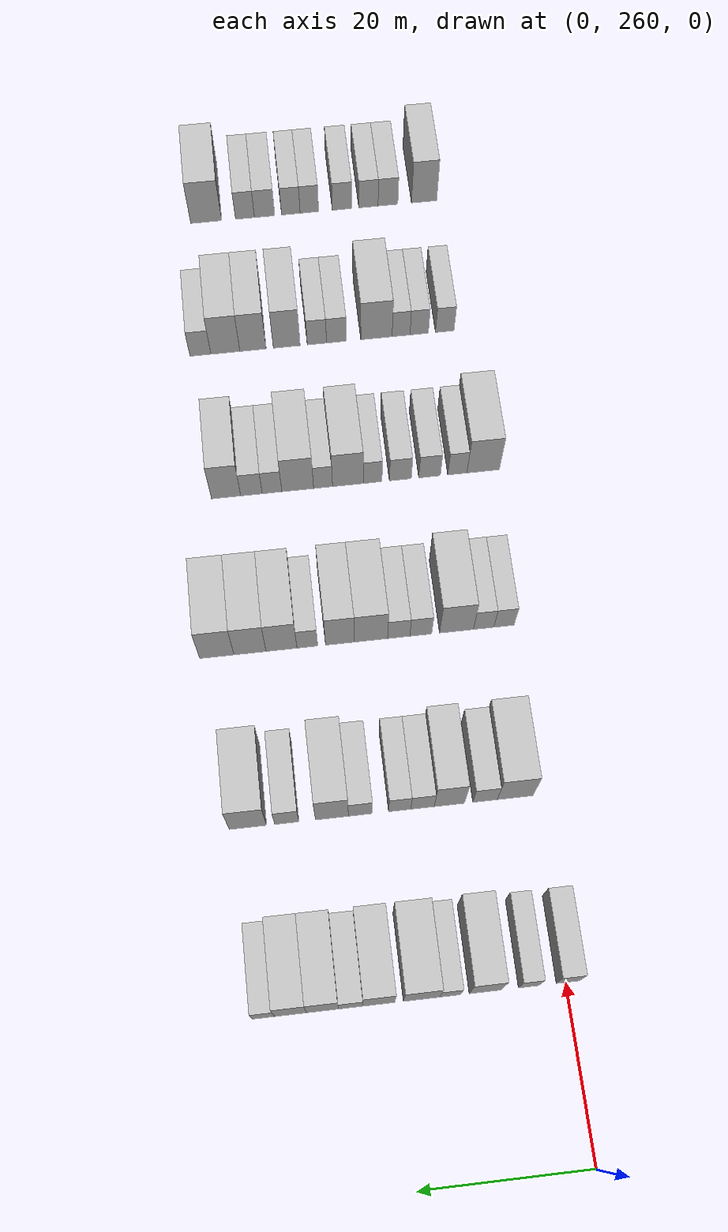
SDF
<sdf version="1.6">
 <world name="default">
  <model name="building_154">
   <static>1</static>
   <pose>25.0000 259.8248 0 0.000000 0.000000 0.000000</pose>
   <link name="link">
    <pose>0 0 3.00 0 0 0</pose>
    <collision name="collision"><geometry><box><size>10.0000 2.7552 6.0000</size></box></geometry></collision>
    <visual name="visual">
     <cast_shadows>0</cast_shadows>
     <geometry><box><size>10.0000 2.7552 6.0000</size></box></geometry>
     <material>
      <script>
       <uri>model://HANNAS_wall/materials/scripts</uri>
       <uri>model://HANNAS_wall/materials/textures</uri>
       <name>vrc/HANNAS_wall</name>
      </script>
     </material>
    </visual>
   </link>
  </model>
  <model name="building_155">
   <static>1</static>
   <pose>25.0000 264.4104 0 0.000000 0.000000 0.000000</pose>
   <link name="link">
    <pose>0 0 3.00 0 0 0</pose>
    <collision name="collision"><geometry><box><size>10.0000 2.4160 6.0000</size></box></geometry></collision>
    <visual name="visual">
     <cast_shadows>0</cast_shadows>
     <geometry><box><size>10.0000 2.4160 6.0000</size></box></geometry>
     <material>
      <script>
       <uri>model://HANNAS_wall/materials/scripts</uri>
       <uri>model://HANNAS_wall/materials/textures</uri>
       <name>vrc/HANNAS_wall</name>
      </script>
     </material>
    </visual>
   </link>
  </model>
  <model name="building_156">
   <static>1</static>
   <pose>25.0000 269.4851 0 0.000000 0.000000 0.000000</pose>
   <link name="link">
    <pose>0 0 4.50 0 0 0</pose>
    <collision name="collision"><geometry><box><size>10.0000 3.7335 9.0000</size></box></geometry></collision>
    <visual name="visual">
     <cast_shadows>0</cast_shadows>
     <geometry><box><size>10.0000 3.7335 9.0000</size></box></geometry>
     <material>
      <script>
       <uri>model://HANNAS_wall/materials/scripts</uri>
       <uri>model://HANNAS_wall/materials/textures</uri>
       <name>vrc/HANNAS_wall</name>
      </script>
     </material>
    </visual>
   </link>
  </model>
  <model name="building_157">
   <static>1</static>
   <pose>25.0000 273.5731 0 0.000000 0.000000 0.000000</pose>
   <link name="link">
    <pose>0 0 3.00 0 0 0</pose>
    <collision name="collision"><geometry><box><size>10.0000 2.4425 6.0000</size></box></geometry></collision>
    <visual name="visual">
     <cast_shadows>0</cast_shadows>
     <geometry><box><size>10.0000 2.4425 6.0000</size></box></geometry>
     <material>
      <script>
       <uri>model://HANNAS_wall/materials/scripts</uri>
       <uri>model://HANNAS_wall/materials/textures</uri>
       <name>vrc/HANNAS_wall</name>
      </script>
     </material>
    </visual>
   </link>
  </model>
  <model name="building_158">
   <static>1</static>
   <pose>25.0000 276.8900 0 0.000000 0.000000 0.000000</pose>
   <link name="link">
    <pose>0 0 4.50 0 0 0</pose>
    <collision name="collision"><geometry><box><size>10.0000 4.1914 9.0000</size></box></geometry></collision>
    <visual name="visual">
     <cast_shadows>0</cast_shadows>
     <geometry><box><size>10.0000 4.1914 9.0000</size></box></geometry>
     <material>
      <script>
       <uri>model://HANNAS_wall/materials/scripts</uri>
       <uri>model://HANNAS_wall/materials/textures</uri>
       <name>vrc/HANNAS_wall</name>
      </script>
     </material>
    </visual>
   </link>
  </model>
  <model name="building_159">
   <static>1</static>
   <pose>25.0000 281.8248 0 0.000000 0.000000 0.000000</pose>
   <link name="link">
    <pose>0 0 4.50 0 0 0</pose>
    <collision name="collision"><geometry><box><size>10.0000 3.6781 9.0000</size></box></geometry></collision>
    <visual name="visual">
     <cast_shadows>0</cast_shadows>
     <geometry><box><size>10.0000 3.6781 9.0000</size></box></geometry>
     <material>
      <script>
       <uri>model://HANNAS_wall/materials/scripts</uri>
       <uri>model://HANNAS_wall/materials/textures</uri>
       <name>vrc/HANNAS_wall</name>
      </script>
     </material>
    </visual>
   </link>
  </model>
  <model name="building_160">
   <static>1</static>
   <pose>25.0000 285.0547 0 0.000000 0.000000 0.000000</pose>
   <link name="link">
    <pose>0 0 3.00 0 0 0</pose>
    <collision name="collision"><geometry><box><size>10.0000 2.7817 6.0000</size></box></geometry></collision>
    <visual name="visual">
     <cast_shadows>0</cast_shadows>
     <geometry><box><size>10.0000 2.7817 6.0000</size></box></geometry>
     <material>
      <script>
       <uri>model://HANNAS_wall/materials/scripts</uri>
       <uri>model://HANNAS_wall/materials/textures</uri>
       <name>vrc/HANNAS_wall</name>
      </script>
     </material>
    </visual>
   </link>
  </model>
  <model name="building_161">
   <static>1</static>
   <pose>25.0000 288.2849 0 0.000000 0.000000 0.000000</pose>
   <link name="link">
    <pose>0 0 4.50 0 0 0</pose>
    <collision name="collision"><geometry><box><size>10.0000 3.6786 9.0000</size></box></geometry></collision>
    <visual name="visual">
     <cast_shadows>0</cast_shadows>
     <geometry><box><size>10.0000 3.6786 9.0000</size></box></geometry>
     <material>
      <script>
       <uri>model://HANNAS_wall/materials/scripts</uri>
       <uri>model://HANNAS_wall/materials/textures</uri>
       <name>vrc/HANNAS_wall</name>
      </script>
     </material>
    </visual>
   </link>
  </model>
  <model name="building_162">
   <static>1</static>
   <pose>25.0000 291.9534 0 0.000000 0.000000 0.000000</pose>
   <link name="link">
    <pose>0 0 4.50 0 0 0</pose>
    <collision name="collision"><geometry><box><size>10.0000 3.6583 9.0000</size></box></geometry></collision>
    <visual name="visual">
     <cast_shadows>0</cast_shadows>
     <geometry><box><size>10.0000 3.6583 9.0000</size></box></geometry>
     <material>
      <script>
       <uri>model://HANNAS_wall/materials/scripts</uri>
       <uri>model://HANNAS_wall/materials/textures</uri>
       <name>vrc/HANNAS_wall</name>
      </script>
     </material>
    </visual>
   </link>
  </model>
  <model name="building_163">
   <static>1</static>
   <pose>25.0000 295.0538 0 0.000000 0.000000 0.000000</pose>
   <link name="link">
    <pose>0 0 3.00 0 0 0</pose>
    <collision name="collision"><geometry><box><size>10.0000 2.5426 6.0000</size></box></geometry></collision>
    <visual name="visual">
     <cast_shadows>0</cast_shadows>
     <geometry><box><size>10.0000 2.5426 6.0000</size></box></geometry>
     <material>
      <script>
       <uri>model://HANNAS_wall/materials/scripts</uri>
       <uri>model://HANNAS_wall/materials/textures</uri>
       <name>vrc/HANNAS_wall</name>
      </script>
     </material>
    </visual>
   </link>
  </model>
  <model name="building_335">
   <static>1</static>
   <pose>47.0000 262.6063 0 0.000000 0.000000 0.000000</pose>
   <link name="link">
    <pose>0 0 4.50 0 0 0</pose>
    <collision name="collision"><geometry><box><size>10.0000 4.3993 9.0000</size></box></geometry></collision>
    <visual name="visual">
     <cast_shadows>0</cast_shadows>
     <geometry><box><size>10.0000 4.3993 9.0000</size></box></geometry>
     <material>
      <script>
       <uri>model://HANNAS_wall/materials/scripts</uri>
       <uri>model://HANNAS_wall/materials/textures</uri>
       <name>vrc/HANNAS_wall</name>
      </script>
     </material>
    </visual>
   </link>
  </model>
  <model name="building_336">
   <static>1</static>
   <pose>47.0000 266.3006 0 0.000000 0.000000 0.000000</pose>
   <link name="link">
    <pose>0 0 3.00 0 0 0</pose>
    <collision name="collision"><geometry><box><size>10.0000 2.9892 6.0000</size></box></geometry></collision>
    <visual name="visual">
     <cast_shadows>0</cast_shadows>
     <geometry><box><size>10.0000 2.9892 6.0000</size></box></geometry>
     <material>
      <script>
       <uri>model://HANNAS_wall/materials/scripts</uri>
       <uri>model://HANNAS_wall/materials/textures</uri>
       <name>vrc/HANNAS_wall</name>
      </script>
     </material>
    </visual>
   </link>
  </model>
  <model name="building_337">
   <static>1</static>
   <pose>47.0000 270.6510 0 0.000000 0.000000 0.000000</pose>
   <link name="link">
    <pose>0 0 4.50 0 0 0</pose>
    <collision name="collision"><geometry><box><size>10.0000 3.7116 9.0000</size></box></geometry></collision>
    <visual name="visual">
     <cast_shadows>0</cast_shadows>
     <geometry><box><size>10.0000 3.7116 9.0000</size></box></geometry>
     <material>
      <script>
       <uri>model://HANNAS_wall/materials/scripts</uri>
       <uri>model://HANNAS_wall/materials/textures</uri>
       <name>vrc/HANNAS_wall</name>
      </script>
     </material>
    </visual>
   </link>
  </model>
  <model name="building_338">
   <static>1</static>
   <pose>47.0000 273.9385 0 0.000000 0.000000 0.000000</pose>
   <link name="link">
    <pose>0 0 3.00 0 0 0</pose>
    <collision name="collision"><geometry><box><size>10.0000 2.8635 6.0000</size></box></geometry></collision>
    <visual name="visual">
     <cast_shadows>0</cast_shadows>
     <geometry><box><size>10.0000 2.8635 6.0000</size></box></geometry>
     <material>
      <script>
       <uri>model://HANNAS_wall/materials/scripts</uri>
       <uri>model://HANNAS_wall/materials/textures</uri>
       <name>vrc/HANNAS_wall</name>
      </script>
     </material>
    </visual>
   </link>
  </model>
  <model name="building_339">
   <static>1</static>
   <pose>47.0000 276.7139 0 0.000000 0.000000 0.000000</pose>
   <link name="link">
    <pose>0 0 3.00 0 0 0</pose>
    <collision name="collision"><geometry><box><size>10.0000 2.6874 6.0000</size></box></geometry></collision>
    <visual name="visual">
     <cast_shadows>0</cast_shadows>
     <geometry><box><size>10.0000 2.6874 6.0000</size></box></geometry>
     <material>
      <script>
       <uri>model://HANNAS_wall/materials/scripts</uri>
       <uri>model://HANNAS_wall/materials/textures</uri>
       <name>vrc/HANNAS_wall</name>
      </script>
     </material>
    </visual>
   </link>
  </model>
  <model name="building_340">
   <static>1</static>
   <pose>47.0000 281.5024 0 0.000000 0.000000 0.000000</pose>
   <link name="link">
    <pose>0 0 3.00 0 0 0</pose>
    <collision name="collision"><geometry><box><size>10.0000 2.8894 6.0000</size></box></geometry></collision>
    <visual name="visual">
     <cast_shadows>0</cast_shadows>
     <geometry><box><size>10.0000 2.8894 6.0000</size></box></geometry>
     <material>
      <script>
       <uri>model://HANNAS_wall/materials/scripts</uri>
       <uri>model://HANNAS_wall/materials/textures</uri>
       <name>vrc/HANNAS_wall</name>
      </script>
     </material>
    </visual>
   </link>
  </model>
  <model name="building_341">
   <static>1</static>
   <pose>47.0000 284.9434 0 0.000000 0.000000 0.000000</pose>
   <link name="link">
    <pose>0 0 4.50 0 0 0</pose>
    <collision name="collision"><geometry><box><size>10.0000 3.9927 9.0000</size></box></geometry></collision>
    <visual name="visual">
     <cast_shadows>0</cast_shadows>
     <geometry><box><size>10.0000 3.9927 9.0000</size></box></geometry>
     <material>
      <script>
       <uri>model://HANNAS_wall/materials/scripts</uri>
       <uri>model://HANNAS_wall/materials/textures</uri>
       <name>vrc/HANNAS_wall</name>
      </script>
     </material>
    </visual>
   </link>
  </model>
  <model name="building_342">
   <static>1</static>
   <pose>47.0000 290.4003 0 0.000000 0.000000 0.000000</pose>
   <link name="link">
    <pose>0 0 3.00 0 0 0</pose>
    <collision name="collision"><geometry><box><size>10.0000 2.9210 6.0000</size></box></geometry></collision>
    <visual name="visual">
     <cast_shadows>0</cast_shadows>
     <geometry><box><size>10.0000 2.9210 6.0000</size></box></geometry>
     <material>
      <script>
       <uri>model://HANNAS_wall/materials/scripts</uri>
       <uri>model://HANNAS_wall/materials/textures</uri>
       <name>vrc/HANNAS_wall</name>
      </script>
     </material>
    </visual>
   </link>
  </model>
  <model name="building_343">
   <static>1</static>
   <pose>47.0000 295.0999 0 0.000000 0.000000 0.000000</pose>
   <link name="link">
    <pose>0 0 4.50 0 0 0</pose>
    <collision name="collision"><geometry><box><size>10.0000 4.4783 9.0000</size></box></geometry></collision>
    <visual name="visual">
     <cast_shadows>0</cast_shadows>
     <geometry><box><size>10.0000 4.4783 9.0000</size></box></geometry>
     <material>
      <script>
       <uri>model://HANNAS_wall/materials/scripts</uri>
       <uri>model://HANNAS_wall/materials/textures</uri>
       <name>vrc/HANNAS_wall</name>
      </script>
     </material>
    </visual>
   </link>
  </model>
  <model name="building_518">
   <static>1</static>
   <pose>69.0000 260.6379 0 0.000000 0.000000 0.000000</pose>
   <link name="link">
    <pose>0 0 3.00 0 0 0</pose>
    <collision name="collision"><geometry><box><size>10.0000 2.6034 6.0000</size></box></geometry></collision>
    <visual name="visual">
     <cast_shadows>0</cast_shadows>
     <geometry><box><size>10.0000 2.6034 6.0000</size></box></geometry>
     <material>
      <script>
       <uri>model://HANNAS_wall/materials/scripts</uri>
       <uri>model://HANNAS_wall/materials/textures</uri>
       <name>vrc/HANNAS_wall</name>
      </script>
     </material>
    </visual>
   </link>
  </model>
  <model name="building_519">
   <static>1</static>
   <pose>69.0000 263.2538 0 0.000000 0.000000 0.000000</pose>
   <link name="link">
    <pose>0 0 3.00 0 0 0</pose>
    <collision name="collision"><geometry><box><size>10.0000 2.6284 6.0000</size></box></geometry></collision>
    <visual name="visual">
     <cast_shadows>0</cast_shadows>
     <geometry><box><size>10.0000 2.6284 6.0000</size></box></geometry>
     <material>
      <script>
       <uri>model://HANNAS_wall/materials/scripts</uri>
       <uri>model://HANNAS_wall/materials/textures</uri>
       <name>vrc/HANNAS_wall</name>
      </script>
     </material>
    </visual>
   </link>
  </model>
  <model name="building_520">
   <static>1</static>
   <pose>69.0000 266.7416 0 0.000000 0.000000 0.000000</pose>
   <link name="link">
    <pose>0 0 4.50 0 0 0</pose>
    <collision name="collision"><geometry><box><size>10.0000 4.3472 9.0000</size></box></geometry></collision>
    <visual name="visual">
     <cast_shadows>0</cast_shadows>
     <geometry><box><size>10.0000 4.3472 9.0000</size></box></geometry>
     <material>
      <script>
       <uri>model://HANNAS_wall/materials/scripts</uri>
       <uri>model://HANNAS_wall/materials/textures</uri>
       <name>vrc/HANNAS_wall</name>
      </script>
     </material>
    </visual>
   </link>
  </model>
  <model name="building_521">
   <static>1</static>
   <pose>69.0000 271.3154 0 0.000000 0.000000 0.000000</pose>
   <link name="link">
    <pose>0 0 3.00 0 0 0</pose>
    <collision name="collision"><geometry><box><size>10.0000 2.8004 6.0000</size></box></geometry></collision>
    <visual name="visual">
     <cast_shadows>0</cast_shadows>
     <geometry><box><size>10.0000 2.8004 6.0000</size></box></geometry>
     <material>
      <script>
       <uri>model://HANNAS_wall/materials/scripts</uri>
       <uri>model://HANNAS_wall/materials/textures</uri>
       <name>vrc/HANNAS_wall</name>
      </script>
     </material>
    </visual>
   </link>
  </model>
  <model name="building_522">
   <static>1</static>
   <pose>69.0000 274.1383 0 0.000000 0.000000 0.000000</pose>
   <link name="link">
    <pose>0 0 3.00 0 0 0</pose>
    <collision name="collision"><geometry><box><size>10.0000 2.8455 6.0000</size></box></geometry></collision>
    <visual name="visual">
     <cast_shadows>0</cast_shadows>
     <geometry><box><size>10.0000 2.8455 6.0000</size></box></geometry>
     <material>
      <script>
       <uri>model://HANNAS_wall/materials/scripts</uri>
       <uri>model://HANNAS_wall/materials/textures</uri>
       <name>vrc/HANNAS_wall</name>
      </script>
     </material>
    </visual>
   </link>
  </model>
  <model name="building_523">
   <static>1</static>
   <pose>69.0000 277.6748 0 0.000000 0.000000 0.000000</pose>
   <link name="link">
    <pose>0 0 4.50 0 0 0</pose>
    <collision name="collision"><geometry><box><size>10.0000 4.2276 9.0000</size></box></geometry></collision>
    <visual name="visual">
     <cast_shadows>0</cast_shadows>
     <geometry><box><size>10.0000 4.2276 9.0000</size></box></geometry>
     <material>
      <script>
       <uri>model://HANNAS_wall/materials/scripts</uri>
       <uri>model://HANNAS_wall/materials/textures</uri>
       <name>vrc/HANNAS_wall</name>
      </script>
     </material>
    </visual>
   </link>
  </model>
  <model name="building_524">
   <static>1</static>
   <pose>69.0000 281.6301 0 0.000000 0.000000 0.000000</pose>
   <link name="link">
    <pose>0 0 4.50 0 0 0</pose>
    <collision name="collision"><geometry><box><size>10.0000 3.6830 9.0000</size></box></geometry></collision>
    <visual name="visual">
     <cast_shadows>0</cast_shadows>
     <geometry><box><size>10.0000 3.6830 9.0000</size></box></geometry>
     <material>
      <script>
       <uri>model://HANNAS_wall/materials/scripts</uri>
       <uri>model://HANNAS_wall/materials/textures</uri>
       <name>vrc/HANNAS_wall</name>
      </script>
     </material>
    </visual>
   </link>
  </model>
  <model name="building_525">
   <static>1</static>
   <pose>69.0000 285.7857 0 0.000000 0.000000 0.000000</pose>
   <link name="link">
    <pose>0 0 3.00 0 0 0</pose>
    <collision name="collision"><geometry><box><size>10.0000 2.6282 6.0000</size></box></geometry></collision>
    <visual name="visual">
     <cast_shadows>0</cast_shadows>
     <geometry><box><size>10.0000 2.6282 6.0000</size></box></geometry>
     <material>
      <script>
       <uri>model://HANNAS_wall/materials/scripts</uri>
       <uri>model://HANNAS_wall/materials/textures</uri>
       <name>vrc/HANNAS_wall</name>
      </script>
     </material>
    </visual>
   </link>
  </model>
  <model name="building_526">
   <static>1</static>
   <pose>69.0000 289.0618 0 0.000000 0.000000 0.000000</pose>
   <link name="link">
    <pose>0 0 4.50 0 0 0</pose>
    <collision name="collision"><geometry><box><size>10.0000 3.9239 9.0000</size></box></geometry></collision>
    <visual name="visual">
     <cast_shadows>0</cast_shadows>
     <geometry><box><size>10.0000 3.9239 9.0000</size></box></geometry>
     <material>
      <script>
       <uri>model://HANNAS_wall/materials/scripts</uri>
       <uri>model://HANNAS_wall/materials/textures</uri>
       <name>vrc/HANNAS_wall</name>
      </script>
     </material>
    </visual>
   </link>
  </model>
  <model name="building_527">
   <static>1</static>
   <pose>69.0000 293.0553 0 0.000000 0.000000 0.000000</pose>
   <link name="link">
    <pose>0 0 4.50 0 0 0</pose>
    <collision name="collision"><geometry><box><size>10.0000 4.0632 9.0000</size></box></geometry></collision>
    <visual name="visual">
     <cast_shadows>0</cast_shadows>
     <geometry><box><size>10.0000 4.0632 9.0000</size></box></geometry>
     <material>
      <script>
       <uri>model://HANNAS_wall/materials/scripts</uri>
       <uri>model://HANNAS_wall/materials/textures</uri>
       <name>vrc/HANNAS_wall</name>
      </script>
     </material>
    </visual>
   </link>
  </model>
  <model name="building_528">
   <static>1</static>
   <pose>69.0000 297.2520 0 0.000000 0.000000 0.000000</pose>
   <link name="link">
    <pose>0 0 4.50 0 0 0</pose>
    <collision name="collision"><geometry><box><size>10.0000 4.3303 9.0000</size></box></geometry></collision>
    <visual name="visual">
     <cast_shadows>0</cast_shadows>
     <geometry><box><size>10.0000 4.3303 9.0000</size></box></geometry>
     <material>
      <script>
       <uri>model://HANNAS_wall/materials/scripts</uri>
       <uri>model://HANNAS_wall/materials/textures</uri>
       <name>vrc/HANNAS_wall</name>
      </script>
     </material>
    </visual>
   </link>
  </model>
  <model name="building_704">
   <static>1</static>
   <pose>91.0000 260.1164 0 0.000000 0.000000 0.000000</pose>
   <link name="link">
    <pose>0 0 4.50 0 0 0</pose>
    <collision name="collision"><geometry><box><size>10.0000 4.3727 9.0000</size></box></geometry></collision>
    <visual name="visual">
     <cast_shadows>0</cast_shadows>
     <geometry><box><size>10.0000 4.3727 9.0000</size></box></geometry>
     <material>
      <script>
       <uri>model://HANNAS_wall/materials/scripts</uri>
       <uri>model://HANNAS_wall/materials/textures</uri>
       <name>vrc/HANNAS_wall</name>
      </script>
     </material>
    </visual>
   </link>
  </model>
  <model name="building_705">
   <static>1</static>
   <pose>91.0000 263.5862 0 0.000000 0.000000 0.000000</pose>
   <link name="link">
    <pose>0 0 3.00 0 0 0</pose>
    <collision name="collision"><geometry><box><size>10.0000 2.5668 6.0000</size></box></geometry></collision>
    <visual name="visual">
     <cast_shadows>0</cast_shadows>
     <geometry><box><size>10.0000 2.5668 6.0000</size></box></geometry>
     <material>
      <script>
       <uri>model://HANNAS_wall/materials/scripts</uri>
       <uri>model://HANNAS_wall/materials/textures</uri>
       <name>vrc/HANNAS_wall</name>
      </script>
     </material>
    </visual>
   </link>
  </model>
  <model name="building_706">
   <static>1</static>
   <pose>91.0000 267.3149 0 0.000000 0.000000 0.000000</pose>
   <link name="link">
    <pose>0 0 3.00 0 0 0</pose>
    <collision name="collision"><geometry><box><size>10.0000 2.8907 6.0000</size></box></geometry></collision>
    <visual name="visual">
     <cast_shadows>0</cast_shadows>
     <geometry><box><size>10.0000 2.8907 6.0000</size></box></geometry>
     <material>
      <script>
       <uri>model://HANNAS_wall/materials/scripts</uri>
       <uri>model://HANNAS_wall/materials/textures</uri>
       <name>vrc/HANNAS_wall</name>
      </script>
     </material>
    </visual>
   </link>
  </model>
  <model name="building_707">
   <static>1</static>
   <pose>91.0000 271.2268 0 0.000000 0.000000 0.000000</pose>
   <link name="link">
    <pose>0 0 3.00 0 0 0</pose>
    <collision name="collision"><geometry><box><size>10.0000 2.9330 6.0000</size></box></geometry></collision>
    <visual name="visual">
     <cast_shadows>0</cast_shadows>
     <geometry><box><size>10.0000 2.9330 6.0000</size></box></geometry>
     <material>
      <script>
       <uri>model://HANNAS_wall/materials/scripts</uri>
       <uri>model://HANNAS_wall/materials/textures</uri>
       <name>vrc/HANNAS_wall</name>
      </script>
     </material>
    </visual>
   </link>
  </model>
  <model name="building_708">
   <static>1</static>
   <pose>91.0000 274.9448 0 0.000000 0.000000 0.000000</pose>
   <link name="link">
    <pose>0 0 3.00 0 0 0</pose>
    <collision name="collision"><geometry><box><size>10.0000 2.5029 6.0000</size></box></geometry></collision>
    <visual name="visual">
     <cast_shadows>0</cast_shadows>
     <geometry><box><size>10.0000 2.5029 6.0000</size></box></geometry>
     <material>
      <script>
       <uri>model://HANNAS_wall/materials/scripts</uri>
       <uri>model://HANNAS_wall/materials/textures</uri>
       <name>vrc/HANNAS_wall</name>
      </script>
     </material>
    </visual>
   </link>
  </model>
  <model name="building_709">
   <static>1</static>
   <pose>91.0000 278.2434 0 0.000000 0.000000 0.000000</pose>
   <link name="link">
    <pose>0 0 4.50 0 0 0</pose>
    <collision name="collision"><geometry><box><size>10.0000 4.0943 9.0000</size></box></geometry></collision>
    <visual name="visual">
     <cast_shadows>0</cast_shadows>
     <geometry><box><size>10.0000 4.0943 9.0000</size></box></geometry>
     <material>
      <script>
       <uri>model://HANNAS_wall/materials/scripts</uri>
       <uri>model://HANNAS_wall/materials/textures</uri>
       <name>vrc/HANNAS_wall</name>
      </script>
     </material>
    </visual>
   </link>
  </model>
  <model name="building_710">
   <static>1</static>
   <pose>91.0000 281.5506 0 0.000000 0.000000 0.000000</pose>
   <link name="link">
    <pose>0 0 3.00 0 0 0</pose>
    <collision name="collision"><geometry><box><size>10.0000 2.5200 6.0000</size></box></geometry></collision>
    <visual name="visual">
     <cast_shadows>0</cast_shadows>
     <geometry><box><size>10.0000 2.5200 6.0000</size></box></geometry>
     <material>
      <script>
       <uri>model://HANNAS_wall/materials/scripts</uri>
       <uri>model://HANNAS_wall/materials/textures</uri>
       <name>vrc/HANNAS_wall</name>
      </script>
     </material>
    </visual>
   </link>
  </model>
  <model name="building_711">
   <static>1</static>
   <pose>91.0000 284.9256 0 0.000000 0.000000 0.000000</pose>
   <link name="link">
    <pose>0 0 4.50 0 0 0</pose>
    <collision name="collision"><geometry><box><size>10.0000 4.2301 9.0000</size></box></geometry></collision>
    <visual name="visual">
     <cast_shadows>0</cast_shadows>
     <geometry><box><size>10.0000 4.2301 9.0000</size></box></geometry>
     <material>
      <script>
       <uri>model://HANNAS_wall/materials/scripts</uri>
       <uri>model://HANNAS_wall/materials/textures</uri>
       <name>vrc/HANNAS_wall</name>
      </script>
     </material>
    </visual>
   </link>
  </model>
  <model name="building_712">
   <static>1</static>
   <pose>91.0000 288.3430 0 0.000000 0.000000 0.000000</pose>
   <link name="link">
    <pose>0 0 3.00 0 0 0</pose>
    <collision name="collision"><geometry><box><size>10.0000 2.6048 6.0000</size></box></geometry></collision>
    <visual name="visual">
     <cast_shadows>0</cast_shadows>
     <geometry><box><size>10.0000 2.6048 6.0000</size></box></geometry>
     <material>
      <script>
       <uri>model://HANNAS_wall/materials/scripts</uri>
       <uri>model://HANNAS_wall/materials/textures</uri>
       <name>vrc/HANNAS_wall</name>
      </script>
     </material>
    </visual>
   </link>
  </model>
  <model name="building_713">
   <static>1</static>
   <pose>91.0000 291.0722 0 0.000000 0.000000 0.000000</pose>
   <link name="link">
    <pose>0 0 3.00 0 0 0</pose>
    <collision name="collision"><geometry><box><size>10.0000 2.8535 6.0000</size></box></geometry></collision>
    <visual name="visual">
     <cast_shadows>0</cast_shadows>
     <geometry><box><size>10.0000 2.8535 6.0000</size></box></geometry>
     <material>
      <script>
       <uri>model://HANNAS_wall/materials/scripts</uri>
       <uri>model://HANNAS_wall/materials/textures</uri>
       <name>vrc/HANNAS_wall</name>
      </script>
     </material>
    </visual>
   </link>
  </model>
  <model name="building_714">
   <static>1</static>
   <pose>91.0000 294.4360 0 0.000000 0.000000 0.000000</pose>
   <link name="link">
    <pose>0 0 4.50 0 0 0</pose>
    <collision name="collision"><geometry><box><size>10.0000 3.8741 9.0000</size></box></geometry></collision>
    <visual name="visual">
     <cast_shadows>0</cast_shadows>
     <geometry><box><size>10.0000 3.8741 9.0000</size></box></geometry>
     <material>
      <script>
       <uri>model://HANNAS_wall/materials/scripts</uri>
       <uri>model://HANNAS_wall/materials/textures</uri>
       <name>vrc/HANNAS_wall</name>
      </script>
     </material>
    </visual>
   </link>
  </model>
  <model name="building_903">
   <static>1</static>
   <pose>113.0000 262.3080 0 0.000000 0.000000 0.000000</pose>
   <link name="link">
    <pose>0 0 3.00 0 0 0</pose>
    <collision name="collision"><geometry><box><size>10.0000 2.5904 6.0000</size></box></geometry></collision>
    <visual name="visual">
     <cast_shadows>0</cast_shadows>
     <geometry><box><size>10.0000 2.5904 6.0000</size></box></geometry>
     <material>
      <script>
       <uri>model://HANNAS_wall/materials/scripts</uri>
       <uri>model://HANNAS_wall/materials/textures</uri>
       <name>vrc/HANNAS_wall</name>
      </script>
     </material>
    </visual>
   </link>
  </model>
  <model name="building_904">
   <static>1</static>
   <pose>113.0000 265.8890 0 0.000000 0.000000 0.000000</pose>
   <link name="link">
    <pose>0 0 3.00 0 0 0</pose>
    <collision name="collision"><geometry><box><size>10.0000 2.5715 6.0000</size></box></geometry></collision>
    <visual name="visual">
     <cast_shadows>0</cast_shadows>
     <geometry><box><size>10.0000 2.5715 6.0000</size></box></geometry>
     <material>
      <script>
       <uri>model://HANNAS_wall/materials/scripts</uri>
       <uri>model://HANNAS_wall/materials/textures</uri>
       <name>vrc/HANNAS_wall</name>
      </script>
     </material>
    </visual>
   </link>
  </model>
  <model name="building_905">
   <static>1</static>
   <pose>113.0000 268.4290 0 0.000000 0.000000 0.000000</pose>
   <link name="link">
    <pose>0 0 3.00 0 0 0</pose>
    <collision name="collision"><geometry><box><size>10.0000 2.5086 6.0000</size></box></geometry></collision>
    <visual name="visual">
     <cast_shadows>0</cast_shadows>
     <geometry><box><size>10.0000 2.5086 6.0000</size></box></geometry>
     <material>
      <script>
       <uri>model://HANNAS_wall/materials/scripts</uri>
       <uri>model://HANNAS_wall/materials/textures</uri>
       <name>vrc/HANNAS_wall</name>
      </script>
     </material>
    </visual>
   </link>
  </model>
  <model name="building_906">
   <static>1</static>
   <pose>113.0000 271.8692 0 0.000000 0.000000 0.000000</pose>
   <link name="link">
    <pose>0 0 4.50 0 0 0</pose>
    <collision name="collision"><geometry><box><size>10.0000 4.3718 9.0000</size></box></geometry></collision>
    <visual name="visual">
     <cast_shadows>0</cast_shadows>
     <geometry><box><size>10.0000 4.3718 9.0000</size></box></geometry>
     <material>
      <script>
       <uri>model://HANNAS_wall/materials/scripts</uri>
       <uri>model://HANNAS_wall/materials/textures</uri>
       <name>vrc/HANNAS_wall</name>
      </script>
     </material>
    </visual>
   </link>
  </model>
  <model name="building_907">
   <static>1</static>
   <pose>113.0000 277.4453 0 0.000000 0.000000 0.000000</pose>
   <link name="link">
    <pose>0 0 3.00 0 0 0</pose>
    <collision name="collision"><geometry><box><size>10.0000 2.7805 6.0000</size></box></geometry></collision>
    <visual name="visual">
     <cast_shadows>0</cast_shadows>
     <geometry><box><size>10.0000 2.7805 6.0000</size></box></geometry>
     <material>
      <script>
       <uri>model://HANNAS_wall/materials/scripts</uri>
       <uri>model://HANNAS_wall/materials/textures</uri>
       <name>vrc/HANNAS_wall</name>
      </script>
     </material>
    </visual>
   </link>
  </model>
  <model name="building_908">
   <static>1</static>
   <pose>113.0000 280.1750 0 0.000000 0.000000 0.000000</pose>
   <link name="link">
    <pose>0 0 3.00 0 0 0</pose>
    <collision name="collision"><geometry><box><size>10.0000 2.6788 6.0000</size></box></geometry></collision>
    <visual name="visual">
     <cast_shadows>0</cast_shadows>
     <geometry><box><size>10.0000 2.6788 6.0000</size></box></geometry>
     <material>
      <script>
       <uri>model://HANNAS_wall/materials/scripts</uri>
       <uri>model://HANNAS_wall/materials/textures</uri>
       <name>vrc/HANNAS_wall</name>
      </script>
     </material>
    </visual>
   </link>
  </model>
  <model name="building_909">
   <static>1</static>
   <pose>113.0000 284.3746 0 0.000000 0.000000 0.000000</pose>
   <link name="link">
    <pose>0 0 4.50 0 0 0</pose>
    <collision name="collision"><geometry><box><size>10.0000 3.7205 9.0000</size></box></geometry></collision>
    <visual name="visual">
     <cast_shadows>0</cast_shadows>
     <geometry><box><size>10.0000 3.7205 9.0000</size></box></geometry>
     <material>
      <script>
       <uri>model://HANNAS_wall/materials/scripts</uri>
       <uri>model://HANNAS_wall/materials/textures</uri>
       <name>vrc/HANNAS_wall</name>
      </script>
     </material>
    </visual>
   </link>
  </model>
  <model name="building_910">
   <static>1</static>
   <pose>113.0000 289.0545 0 0.000000 0.000000 0.000000</pose>
   <link name="link">
    <pose>0 0 4.50 0 0 0</pose>
    <collision name="collision"><geometry><box><size>10.0000 3.6393 9.0000</size></box></geometry></collision>
    <visual name="visual">
     <cast_shadows>0</cast_shadows>
     <geometry><box><size>10.0000 3.6393 9.0000</size></box></geometry>
     <material>
      <script>
       <uri>model://HANNAS_wall/materials/scripts</uri>
       <uri>model://HANNAS_wall/materials/textures</uri>
       <name>vrc/HANNAS_wall</name>
      </script>
     </material>
    </visual>
   </link>
  </model>
  <model name="building_911">
   <static>1</static>
   <pose>113.0000 292.8883 0 0.000000 0.000000 0.000000</pose>
   <link name="link">
    <pose>0 0 4.50 0 0 0</pose>
    <collision name="collision"><geometry><box><size>10.0000 4.0284 9.0000</size></box></geometry></collision>
    <visual name="visual">
     <cast_shadows>0</cast_shadows>
     <geometry><box><size>10.0000 4.0284 9.0000</size></box></geometry>
     <material>
      <script>
       <uri>model://HANNAS_wall/materials/scripts</uri>
       <uri>model://HANNAS_wall/materials/textures</uri>
       <name>vrc/HANNAS_wall</name>
      </script>
     </material>
    </visual>
   </link>
  </model>
  <model name="building_912">
   <static>1</static>
   <pose>113.0000 296.3426 0 0.000000 0.000000 0.000000</pose>
   <link name="link">
    <pose>0 0 3.00 0 0 0</pose>
    <collision name="collision"><geometry><box><size>10.0000 2.8801 6.0000</size></box></geometry></collision>
    <visual name="visual">
     <cast_shadows>0</cast_shadows>
     <geometry><box><size>10.0000 2.8801 6.0000</size></box></geometry>
     <material>
      <script>
       <uri>model://HANNAS_wall/materials/scripts</uri>
       <uri>model://HANNAS_wall/materials/textures</uri>
       <name>vrc/HANNAS_wall</name>
      </script>
     </material>
    </visual>
   </link>
  </model>
  <model name="building_1088">
   <static>1</static>
   <pose>135.0000 262.3573 0 0.000000 0.000000 0.000000</pose>
   <link name="link">
    <pose>0 0 4.50 0 0 0</pose>
    <collision name="collision"><geometry><box><size>10.0000 3.6842 9.0000</size></box></geometry></collision>
    <visual name="visual">
     <cast_shadows>0</cast_shadows>
     <geometry><box><size>10.0000 3.6842 9.0000</size></box></geometry>
     <material>
      <script>
       <uri>model://HANNAS_wall/materials/scripts</uri>
       <uri>model://HANNAS_wall/materials/textures</uri>
       <name>vrc/HANNAS_wall</name>
      </script>
     </material>
    </visual>
   </link>
  </model>
  <model name="building_1089">
   <static>1</static>
   <pose>135.0000 267.6400 0 0.000000 0.000000 0.000000</pose>
   <link name="link">
    <pose>0 0 3.00 0 0 0</pose>
    <collision name="collision"><geometry><box><size>10.0000 2.8811 6.0000</size></box></geometry></collision>
    <visual name="visual">
     <cast_shadows>0</cast_shadows>
     <geometry><box><size>10.0000 2.8811 6.0000</size></box></geometry>
     <material>
      <script>
       <uri>model://HANNAS_wall/materials/scripts</uri>
       <uri>model://HANNAS_wall/materials/textures</uri>
       <name>vrc/HANNAS_wall</name>
      </script>
     </material>
    </visual>
   </link>
  </model>
  <model name="building_1090">
   <static>1</static>
   <pose>135.0000 270.4835 0 0.000000 0.000000 0.000000</pose>
   <link name="link">
    <pose>0 0 3.00 0 0 0</pose>
    <collision name="collision"><geometry><box><size>10.0000 2.8059 6.0000</size></box></geometry></collision>
    <visual name="visual">
     <cast_shadows>0</cast_shadows>
     <geometry><box><size>10.0000 2.8059 6.0000</size></box></geometry>
     <material>
      <script>
       <uri>model://HANNAS_wall/materials/scripts</uri>
       <uri>model://HANNAS_wall/materials/textures</uri>
       <name>vrc/HANNAS_wall</name>
      </script>
     </material>
    </visual>
   </link>
  </model>
  <model name="building_1091">
   <static>1</static>
   <pose>135.0000 274.3096 0 0.000000 0.000000 0.000000</pose>
   <link name="link">
    <pose>0 0 3.00 0 0 0</pose>
    <collision name="collision"><geometry><box><size>10.0000 2.8462 6.0000</size></box></geometry></collision>
    <visual name="visual">
     <cast_shadows>0</cast_shadows>
     <geometry><box><size>10.0000 2.8462 6.0000</size></box></geometry>
     <material>
      <script>
       <uri>model://HANNAS_wall/materials/scripts</uri>
       <uri>model://HANNAS_wall/materials/textures</uri>
       <name>vrc/HANNAS_wall</name>
      </script>
     </material>
    </visual>
   </link>
  </model>
  <model name="building_1092">
   <static>1</static>
   <pose>135.0000 279.0768 0 0.000000 0.000000 0.000000</pose>
   <link name="link">
    <pose>0 0 3.00 0 0 0</pose>
    <collision name="collision"><geometry><box><size>10.0000 2.6882 6.0000</size></box></geometry></collision>
    <visual name="visual">
     <cast_shadows>0</cast_shadows>
     <geometry><box><size>10.0000 2.6882 6.0000</size></box></geometry>
     <material>
      <script>
       <uri>model://HANNAS_wall/materials/scripts</uri>
       <uri>model://HANNAS_wall/materials/textures</uri>
       <name>vrc/HANNAS_wall</name>
      </script>
     </material>
    </visual>
   </link>
  </model>
  <model name="building_1093">
   <static>1</static>
   <pose>135.0000 281.7648 0 0.000000 0.000000 0.000000</pose>
   <link name="link">
    <pose>0 0 3.00 0 0 0</pose>
    <collision name="collision"><geometry><box><size>10.0000 2.6877 6.0000</size></box></geometry></collision>
    <visual name="visual">
     <cast_shadows>0</cast_shadows>
     <geometry><box><size>10.0000 2.6877 6.0000</size></box></geometry>
     <material>
      <script>
       <uri>model://HANNAS_wall/materials/scripts</uri>
       <uri>model://HANNAS_wall/materials/textures</uri>
       <name>vrc/HANNAS_wall</name>
      </script>
     </material>
    </visual>
   </link>
  </model>
  <model name="building_1094">
   <static>1</static>
   <pose>135.0000 285.5748 0 0.000000 0.000000 0.000000</pose>
   <link name="link">
    <pose>0 0 3.00 0 0 0</pose>
    <collision name="collision"><geometry><box><size>10.0000 2.9323 6.0000</size></box></geometry></collision>
    <visual name="visual">
     <cast_shadows>0</cast_shadows>
     <geometry><box><size>10.0000 2.9323 6.0000</size></box></geometry>
     <material>
      <script>
       <uri>model://HANNAS_wall/materials/scripts</uri>
       <uri>model://HANNAS_wall/materials/textures</uri>
       <name>vrc/HANNAS_wall</name>
      </script>
     </material>
    </visual>
   </link>
  </model>
  <model name="building_1095">
   <static>1</static>
   <pose>135.0000 288.4104 0 0.000000 0.000000 0.000000</pose>
   <link name="link">
    <pose>0 0 3.00 0 0 0</pose>
    <collision name="collision"><geometry><box><size>10.0000 2.7388 6.0000</size></box></geometry></collision>
    <visual name="visual">
     <cast_shadows>0</cast_shadows>
     <geometry><box><size>10.0000 2.7388 6.0000</size></box></geometry>
     <material>
      <script>
       <uri>model://HANNAS_wall/materials/scripts</uri>
       <uri>model://HANNAS_wall/materials/textures</uri>
       <name>vrc/HANNAS_wall</name>
      </script>
     </material>
    </visual>
   </link>
  </model>
  <model name="building_1096">
   <static>1</static>
   <pose>135.0000 294.0151 0 0.000000 0.000000 0.000000</pose>
   <link name="link">
    <pose>0 0 4.50 0 0 0</pose>
    <collision name="collision"><geometry><box><size>10.0000 4.4706 9.0000</size></box></geometry></collision>
    <visual name="visual">
     <cast_shadows>0</cast_shadows>
     <geometry><box><size>10.0000 4.4706 9.0000</size></box></geometry>
     <material>
      <script>
       <uri>model://HANNAS_wall/materials/scripts</uri>
       <uri>model://HANNAS_wall/materials/textures</uri>
       <name>vrc/HANNAS_wall</name>
      </script>
     </material>
    </visual>
   </link>
  </model>
 </world>
</sdf>
